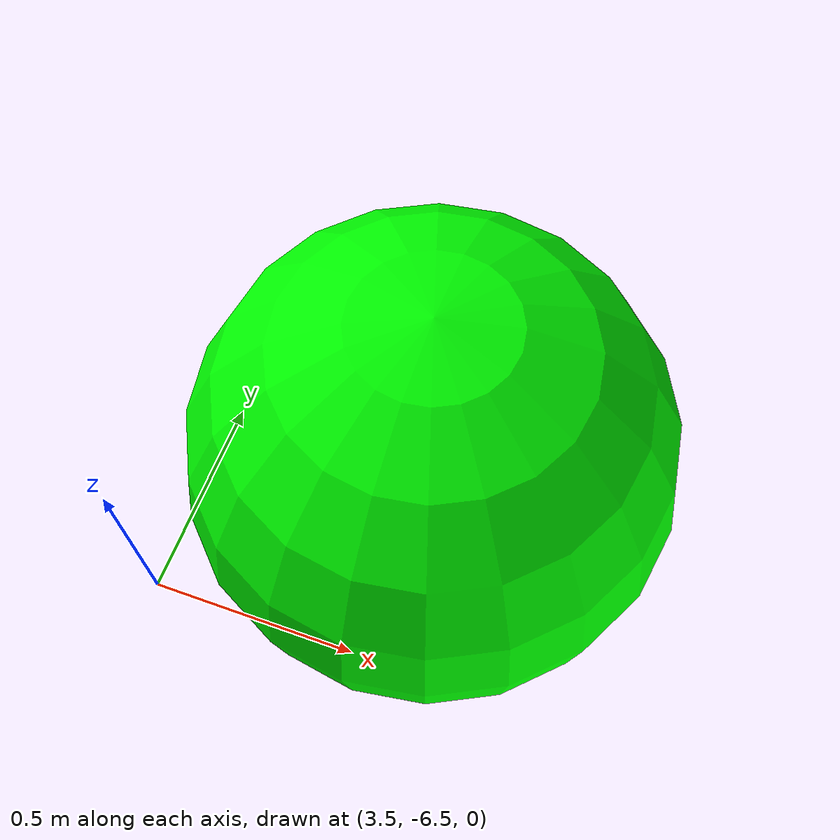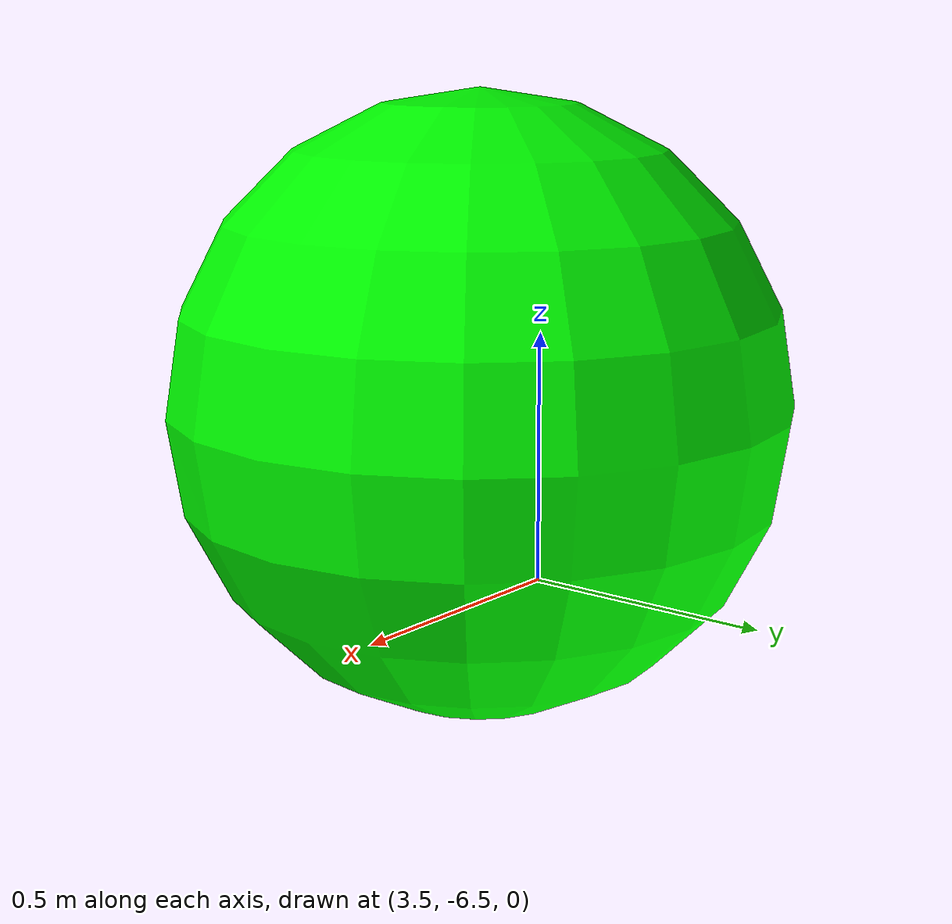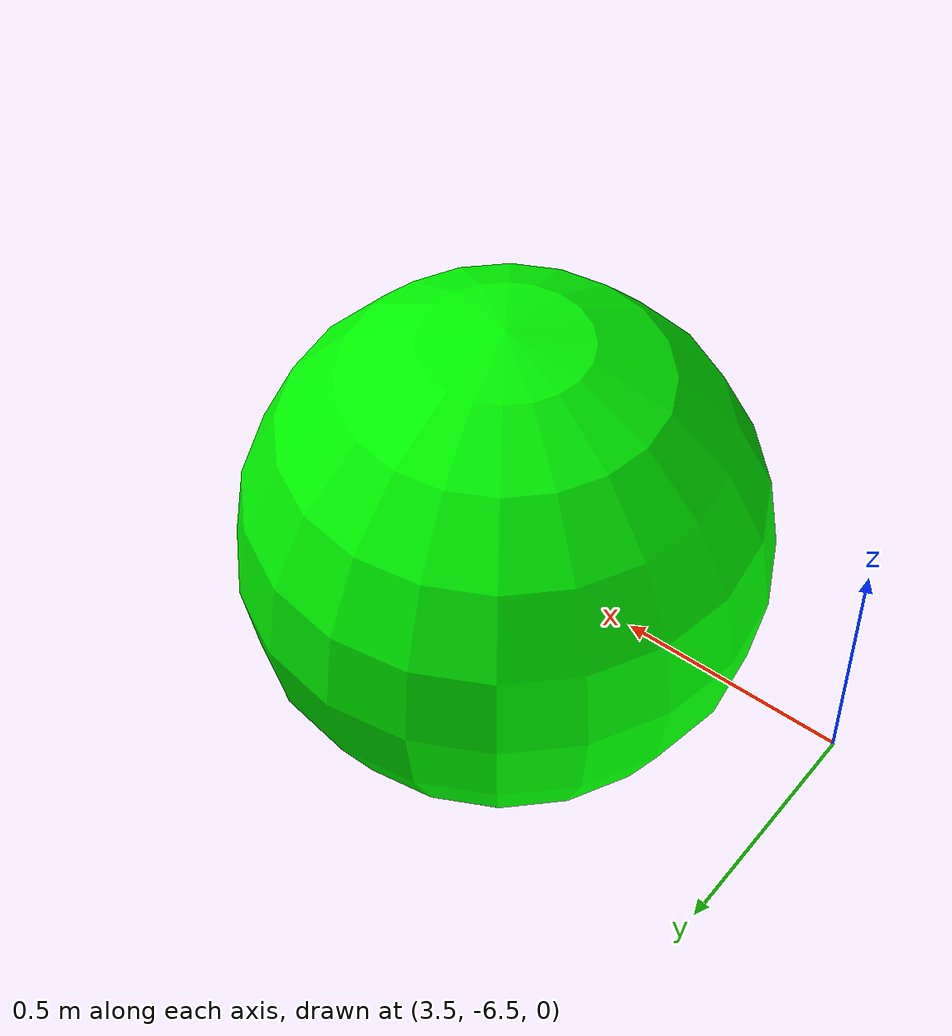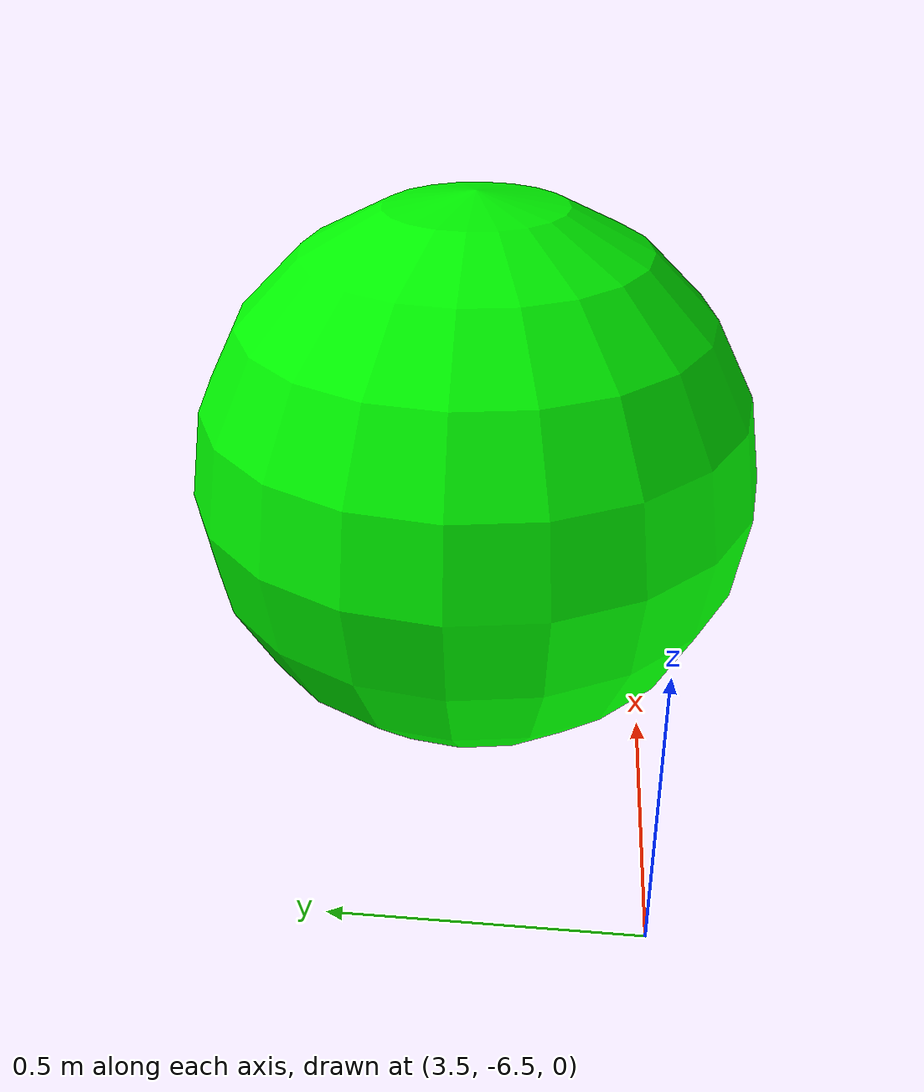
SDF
<?xml version='1.0'?>
<sdf version='1.10'>

    <model name='sphere'>
      <pose>4.08668819263786 -6.1808689918282642 0.499999999902001 0 0 0</pose>
      <link name='sphere_link'>
        <inertial>
          <inertia>
            <ixx>0.10000000000000001</ixx>
            <ixy>0</ixy>
            <ixz>0</ixz>
            <iyy>0.10000000000000001</iyy>
            <iyz>0</iyz>
            <izz>0.10000000000000001</izz>
          </inertia>
          <mass>1</mass>
          <pose>0 0 0 0 0 0</pose>
        </inertial>
        <collision name='sphere_collision'>
          <geometry>
            <sphere>
              <radius>0.5</radius>
            </sphere>
          </geometry>
          <surface>
            <friction>
              <ode/>
            </friction>
            <bounce/>
            <contact/>
          </surface>
        </collision>
        <visual name='sphere_visual'>
          <geometry>
            <sphere>
              <radius>0.5</radius>
            </sphere>
          </geometry>
          <material>
            <ambient>0.0 1.0 0.0 1</ambient>
            <diffuse>0.0 1.0 0.0 1</diffuse>
            <specular>0 1 0 1</specular>
          </material>
        </visual>
        <pose>0 0 0 0 0 0</pose>
        <enable_wind>false</enable_wind>
      </link>
      <static>false</static>
      <self_collide>false</self_collide>
    </model>

</sdf>
